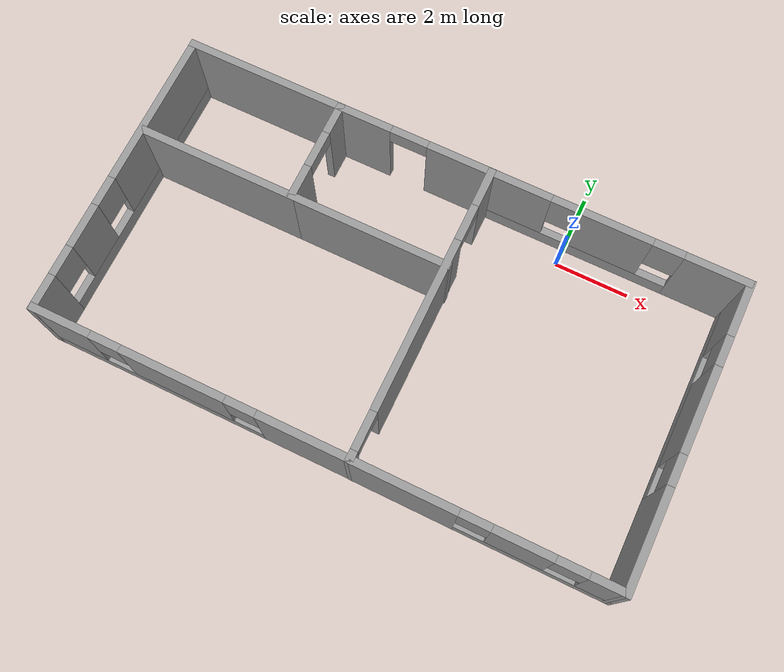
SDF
<?xml version='1.0'?>
<sdf version='1.4'>
  <model name='indoor_walls_doors'>
    <link name='Wall_0'>
      <pose>-2.32354 -3.38502 0 0 0 -1.5708</pose>
      <visual name='Wall_0_Visual_0'>
        <pose>-3.47484 0 1.25 0 -0 0</pose>
        <geometry>
          <box>
            <size>1.06471 0.2 2.5</size>
          </box>
        </geometry>
        <material>
          <script>
            <uri>file://media/materials/scripts/gazebo.material</uri>
            <name>Gazebo/Grey</name>
          </script>
        </material>
      </visual>
      <collision name='Wall_0_Collision_0'>
        <geometry>
          <box>
            <size>1.06471 0.2 2.5</size>
          </box>
        </geometry>
        <pose>-3.47484 0 1.25 0 -0 0</pose>
      </collision>
      <visual name='Wall_0_Visual_1'>
        <pose>0.36959 0 1.25 0 -0 0</pose>
        <geometry>
          <box>
            <size>4.62416 0.2 2.5</size>
          </box>
        </geometry>
        <material>
          <script>
            <uri>file://media/materials/scripts/gazebo.material</uri>
            <name>Gazebo/Grey</name>
          </script>
        </material>
      </visual>
      <collision name='Wall_0_Collision_1'>
        <geometry>
          <box>
            <size>4.62416 0.2 2.5</size>
          </box>
        </geometry>
        <pose>0.36959 0 1.25 0 -0 0</pose>
      </collision>
      <visual name='Wall_0_Visual_2'>
        <pose>3.84443 0 1.25 0 -0 0</pose>
        <geometry>
          <box>
            <size>0.325526 0.2 2.5</size>
          </box>
        </geometry>
        <material>
          <script>
            <uri>file://media/materials/scripts/gazebo.material</uri>
            <name>Gazebo/Grey</name>
          </script>
        </material>
      </visual>
      <collision name='Wall_0_Collision_2'>
        <geometry>
          <box>
            <size>0.325526 0.2 2.5</size>
          </box>
        </geometry>
        <pose>3.84443 0 1.25 0 -0 0</pose>
      </collision>
      <visual name='Wall_0_Visual_3'>
        <pose>-2.44249 0 2.25 0 -0 0</pose>
        <geometry>
          <box>
            <size>1 0.2 0.5</size>
          </box>
        </geometry>
        <material>
          <script>
            <uri>file://media/materials/scripts/gazebo.material</uri>
            <name>Gazebo/Grey</name>
          </script>
        </material>
      </visual>
      <collision name='Wall_0_Collision_3'>
        <geometry>
          <box>
            <size>1 0.2 0.5</size>
          </box>
        </geometry>
        <pose>-2.44249 0 2.25 0 -0 0</pose>
      </collision>
      <visual name='Wall_0_Visual_4'>
        <pose>3.18167 0 2.25 0 -0 0</pose>
        <geometry>
          <box>
            <size>1 0.2 0.5</size>
          </box>
        </geometry>
        <material>
          <script>
            <uri>file://media/materials/scripts/gazebo.material</uri>
            <name>Gazebo/Grey</name>
          </script>
        </material>
      </visual>
      <collision name='Wall_0_Collision_4'>
        <geometry>
          <box>
            <size>1 0.2 0.5</size>
          </box>
        </geometry>
        <pose>3.18167 0 2.25 0 -0 0</pose>
      </collision>
    </link>
    <link name='Wall_1'>
      <pose>1.02791 -7.29982 0 0 0 -0.002269</pose>
      <visual name='Wall_1_Visual_0'>
        <pose>-2.04952 0 1.25 0 -0 0</pose>
        <geometry>
          <box>
            <size>2.80386 0.2 2.5</size>
          </box>
        </geometry>
        <material>
          <script>
            <uri>file://media/materials/scripts/gazebo.material</uri>
            <name>Gazebo/Grey</name>
          </script>
        </material>
      </visual>
      <collision name='Wall_1_Collision_0'>
        <geometry>
          <box>
            <size>2.80386 0.2 2.5</size>
          </box>
        </geometry>
        <pose>-2.04952 0 1.25 0 -0 0</pose>
      </collision>
      <visual name='Wall_1_Visual_1'>
        <pose>1.40193 0 0.25 0 -0 0</pose>
        <geometry>
          <box>
            <size>4.09905 0.2 0.5</size>
          </box>
        </geometry>
        <material>
          <script>
            <uri>file://media/materials/scripts/gazebo.material</uri>
            <name>Gazebo/Grey</name>
          </script>
        </material>
      </visual>
      <collision name='Wall_1_Collision_1'>
        <geometry>
          <box>
            <size>4.09905 0.2 0.5</size>
          </box>
        </geometry>
        <pose>1.40193 0 0.25 0 -0 0</pose>
      </collision>
      <visual name='Wall_1_Visual_2'>
        <pose>0.913581 0 1.5 0 -0 0</pose>
        <geometry>
          <box>
            <size>1.52235 0.2 2</size>
          </box>
        </geometry>
        <material>
          <script>
            <uri>file://media/materials/scripts/gazebo.material</uri>
            <name>Gazebo/Grey</name>
          </script>
        </material>
      </visual>
      <collision name='Wall_1_Collision_2'>
        <geometry>
          <box>
            <size>1.52235 0.2 2</size>
          </box>
        </geometry>
        <pose>0.913581 0 1.5 0 -0 0</pose>
      </collision>
      <visual name='Wall_1_Visual_3'>
        <pose>2.96311 0 1.5 0 -0 0</pose>
        <geometry>
          <box>
            <size>0.976698 0.2 2</size>
          </box>
        </geometry>
        <material>
          <script>
            <uri>file://media/materials/scripts/gazebo.material</uri>
            <name>Gazebo/Grey</name>
          </script>
        </material>
      </visual>
      <collision name='Wall_1_Collision_3'>
        <geometry>
          <box>
            <size>0.976698 0.2 2</size>
          </box>
        </geometry>
        <pose>2.96311 0 1.5 0 -0 0</pose>
      </collision>
      <visual name='Wall_1_Visual_4'>
        <pose>-0.247595 0 1.9 0 -0 0</pose>
        <geometry>
          <box>
            <size>0.8 0.2 1.2</size>
          </box>
        </geometry>
        <material>
          <script>
            <uri>file://media/materials/scripts/gazebo.material</uri>
            <name>Gazebo/Grey</name>
          </script>
        </material>
      </visual>
      <collision name='Wall_1_Collision_4'>
        <geometry>
          <box>
            <size>0.8 0.2 1.2</size>
          </box>
        </geometry>
        <pose>-0.247595 0 1.9 0 -0 0</pose>
      </collision>
      <visual name='Wall_1_Visual_5'>
        <pose>2.07476 0 1.9 0 -0 0</pose>
        <geometry>
          <box>
            <size>0.8 0.2 1.2</size>
          </box>
        </geometry>
        <material>
          <script>
            <uri>file://media/materials/scripts/gazebo.material</uri>
            <name>Gazebo/Grey</name>
          </script>
        </material>
      </visual>
      <collision name='Wall_1_Collision_5'>
        <geometry>
          <box>
            <size>0.8 0.2 1.2</size>
          </box>
        </geometry>
        <pose>2.07476 0 1.9 0 -0 0</pose>
      </collision>
    </link>
    <link name='Wall_10'>
      <pose>-6.43207 0.532142 0 0 -0 0</pose>
      <visual name='Wall_10_Visual_0'>
        <pose>-1.44688 0 1.25 0 -0 0</pose>
        <geometry>
          <box>
            <size>5.6962 0.2 2.5</size>
          </box>
        </geometry>
        <material>
          <script>
            <uri>file://media/materials/scripts/gazebo.material</uri>
            <name>Gazebo/Grey</name>
          </script>
        </material>
      </visual>
      <collision name='Wall_10_Collision_0'>
        <geometry>
          <box>
            <size>5.6962 0.2 2.5</size>
          </box>
        </geometry>
        <pose>-1.44688 0 1.25 0 -0 0</pose>
      </collision>
      <visual name='Wall_10_Visual_1'>
        <pose>3.3481 0 1.25 0 -0 0</pose>
        <geometry>
          <box>
            <size>1.89375 0.2 2.5</size>
          </box>
        </geometry>
        <material>
          <script>
            <uri>file://media/materials/scripts/gazebo.material</uri>
            <name>Gazebo/Grey</name>
          </script>
        </material>
      </visual>
      <collision name='Wall_10_Collision_1'>
        <geometry>
          <box>
            <size>1.89375 0.2 2.5</size>
          </box>
        </geometry>
        <pose>3.3481 0 1.25 0 -0 0</pose>
      </collision>
      <visual name='Wall_10_Visual_2'>
        <pose>1.90123 0 2.25 0 -0 0</pose>
        <geometry>
          <box>
            <size>1 0.2 0.5</size>
          </box>
        </geometry>
        <material>
          <script>
            <uri>file://media/materials/scripts/gazebo.material</uri>
            <name>Gazebo/Grey</name>
          </script>
        </material>
      </visual>
      <collision name='Wall_10_Collision_2'>
        <geometry>
          <box>
            <size>1 0.2 0.5</size>
          </box>
        </geometry>
        <pose>1.90123 0 2.25 0 -0 0</pose>
      </collision>
    </link>
    <link name='Wall_11'>
      <pose>-10.6224 -3.39702 0 0 -0 1.5708</pose>
      <visual name='Wall_11_Visual_0'>
        <pose>-3.49564 0 1.25 0 -0 0</pose>
        <geometry>
          <box>
            <size>0.992206 0.2 2.5</size>
          </box>
        </geometry>
        <material>
          <script>
            <uri>file://media/materials/scripts/gazebo.material</uri>
            <name>Gazebo/Grey</name>
          </script>
        </material>
      </visual>
      <collision name='Wall_11_Collision_0'>
        <geometry>
          <box>
            <size>0.992206 0.2 2.5</size>
          </box>
        </geometry>
        <pose>-3.49564 0 1.25 0 -0 0</pose>
      </collision>
      <visual name='Wall_11_Visual_1'>
        <pose>0.496103 0 0.25 0 -0 0</pose>
        <geometry>
          <box>
            <size>6.99129 0.2 0.5</size>
          </box>
        </geometry>
        <material>
          <script>
            <uri>file://media/materials/scripts/gazebo.material</uri>
            <name>Gazebo/Grey</name>
          </script>
        </material>
      </visual>
      <collision name='Wall_11_Collision_1'>
        <geometry>
          <box>
            <size>6.99129 0.2 0.5</size>
          </box>
        </geometry>
        <pose>0.496103 0 0.25 0 -0 0</pose>
      </collision>
      <visual name='Wall_11_Visual_2'>
        <pose>-1.60203 0 1.5 0 -0 0</pose>
        <geometry>
          <box>
            <size>1.19501 0.2 2</size>
          </box>
        </geometry>
        <material>
          <script>
            <uri>file://media/materials/scripts/gazebo.material</uri>
            <name>Gazebo/Grey</name>
          </script>
        </material>
      </visual>
      <collision name='Wall_11_Collision_2'>
        <geometry>
          <box>
            <size>1.19501 0.2 2</size>
          </box>
        </geometry>
        <pose>-1.60203 0 1.5 0 -0 0</pose>
      </collision>
      <visual name='Wall_11_Visual_3'>
        <pose>1.89361 0 1.5 0 -0 0</pose>
        <geometry>
          <box>
            <size>4.19627 0.2 2</size>
          </box>
        </geometry>
        <material>
          <script>
            <uri>file://media/materials/scripts/gazebo.material</uri>
            <name>Gazebo/Grey</name>
          </script>
        </material>
      </visual>
      <collision name='Wall_11_Collision_3'>
        <geometry>
          <box>
            <size>4.19627 0.2 2</size>
          </box>
        </geometry>
        <pose>1.89361 0 1.5 0 -0 0</pose>
      </collision>
      <visual name='Wall_11_Visual_4'>
        <pose>-2.59954 0 1.9 0 -0 0</pose>
        <geometry>
          <box>
            <size>0.8 0.2 1.2</size>
          </box>
        </geometry>
        <material>
          <script>
            <uri>file://media/materials/scripts/gazebo.material</uri>
            <name>Gazebo/Grey</name>
          </script>
        </material>
      </visual>
      <collision name='Wall_11_Collision_4'>
        <geometry>
          <box>
            <size>0.8 0.2 1.2</size>
          </box>
        </geometry>
        <pose>-2.59954 0 1.9 0 -0 0</pose>
      </collision>
      <visual name='Wall_11_Visual_5'>
        <pose>-0.604526 0 1.9 0 -0 0</pose>
        <geometry>
          <box>
            <size>0.8 0.2 1.2</size>
          </box>
        </geometry>
        <material>
          <script>
            <uri>file://media/materials/scripts/gazebo.material</uri>
            <name>Gazebo/Grey</name>
          </script>
        </material>
      </visual>
      <collision name='Wall_11_Collision_5'>
        <geometry>
          <box>
            <size>0.8 0.2 1.2</size>
          </box>
        </geometry>
        <pose>-0.604526 0 1.9 0 -0 0</pose>
      </collision>
    </link>
    <link name='Wall_13'>
      <pose>-6.52366 -7.28512 0 0 -0 3.14159</pose>
      <visual name='Wall_13_Visual_0'>
        <pose>-2.99927 0 1.25 0 -0 0</pose>
        <geometry>
          <box>
            <size>2.38331 0.2 2.5</size>
          </box>
        </geometry>
        <material>
          <script>
            <uri>file://media/materials/scripts/gazebo.material</uri>
            <name>Gazebo/Grey</name>
          </script>
        </material>
      </visual>
      <collision name='Wall_13_Collision_0'>
        <geometry>
          <box>
            <size>2.38331 0.2 2.5</size>
          </box>
        </geometry>
        <pose>-2.99927 0 1.25 0 -0 0</pose>
      </collision>
      <visual name='Wall_13_Visual_1'>
        <pose>1.19165 0 0.25 0 -0 0</pose>
        <geometry>
          <box>
            <size>5.99854 0.2 0.5</size>
          </box>
        </geometry>
        <material>
          <script>
            <uri>file://media/materials/scripts/gazebo.material</uri>
            <name>Gazebo/Grey</name>
          </script>
        </material>
      </visual>
      <collision name='Wall_13_Collision_1'>
        <geometry>
          <box>
            <size>5.99854 0.2 0.5</size>
          </box>
        </geometry>
        <pose>1.19165 0 0.25 0 -0 0</pose>
      </collision>
      <visual name='Wall_13_Visual_2'>
        <pose>0.374599 0 1.5 0 -0 0</pose>
        <geometry>
          <box>
            <size>2.76443 0.2 2</size>
          </box>
        </geometry>
        <material>
          <script>
            <uri>file://media/materials/scripts/gazebo.material</uri>
            <name>Gazebo/Grey</name>
          </script>
        </material>
      </visual>
      <collision name='Wall_13_Collision_2'>
        <geometry>
          <box>
            <size>2.76443 0.2 2</size>
          </box>
        </geometry>
        <pose>0.374599 0 1.5 0 -0 0</pose>
      </collision>
      <visual name='Wall_13_Visual_3'>
        <pose>3.37387 0 1.5 0 -0 0</pose>
        <geometry>
          <box>
            <size>1.63411 0.2 2</size>
          </box>
        </geometry>
        <material>
          <script>
            <uri>file://media/materials/scripts/gazebo.material</uri>
            <name>Gazebo/Grey</name>
          </script>
        </material>
      </visual>
      <collision name='Wall_13_Collision_3'>
        <geometry>
          <box>
            <size>1.63411 0.2 2</size>
          </box>
        </geometry>
        <pose>3.37387 0 1.5 0 -0 0</pose>
      </collision>
      <visual name='Wall_13_Visual_4'>
        <pose>-1.40761 0 1.9 0 -0 0</pose>
        <geometry>
          <box>
            <size>0.8 0.2 1.2</size>
          </box>
        </geometry>
        <material>
          <script>
            <uri>file://media/materials/scripts/gazebo.material</uri>
            <name>Gazebo/Grey</name>
          </script>
        </material>
      </visual>
      <collision name='Wall_13_Collision_4'>
        <geometry>
          <box>
            <size>0.8 0.2 1.2</size>
          </box>
        </geometry>
        <pose>-1.40761 0 1.9 0 -0 0</pose>
      </collision>
      <visual name='Wall_13_Visual_5'>
        <pose>2.15681 0 1.9 0 -0 0</pose>
        <geometry>
          <box>
            <size>0.8 0.2 1.2</size>
          </box>
        </geometry>
        <material>
          <script>
            <uri>file://media/materials/scripts/gazebo.material</uri>
            <name>Gazebo/Grey</name>
          </script>
        </material>
      </visual>
      <collision name='Wall_13_Collision_5'>
        <geometry>
          <box>
            <size>0.8 0.2 1.2</size>
          </box>
        </geometry>
        <pose>2.15681 0 1.9 0 -0 0</pose>
      </collision>
    </link>
    <link name='Wall_15'>
      <collision name='Wall_15_Collision'>
        <geometry>
          <box>
            <size>4.32517 0.2 2.5</size>
          </box>
        </geometry>
        <pose>0 0 1.25 0 -0 0</pose>
      </collision>
      <visual name='Wall_15_Visual'>
        <pose>0 0 1.25 0 -0 0</pose>
        <geometry>
          <box>
            <size>4.32517 0.2 2.5</size>
          </box>
        </geometry>
        <material>
          <script>
            <uri>file://media/materials/scripts/gazebo.material</uri>
            <name>Gazebo/Grey</name>
          </script>
        </material>
      </visual>
      <velocity_decay>
        <linear>0</linear>
        <angular>0</angular>
      </velocity_decay>
      <pose>-4.35902 -2.13954 0 0 -0 0</pose>
    </link>
    <link name='Wall_17'>
      <collision name='Wall_17_Collision'>
        <geometry>
          <box>
            <size>4.29721 0.2 2.5</size>
          </box>
        </geometry>
        <pose>0 0 1.25 0 -0 0</pose>
      </collision>
      <visual name='Wall_17_Visual'>
        <pose>0 0 1.25 0 -0 0</pose>
        <geometry>
          <box>
            <size>4.29721 0.2 2.5</size>
          </box>
        </geometry>
        <material>
          <script>
            <uri>file://media/materials/scripts/gazebo.material</uri>
            <name>Gazebo/Grey</name>
          </script>
        </material>
      </visual>
      <velocity_decay>
        <linear>0</linear>
        <angular>0</angular>
      </velocity_decay>
      <pose>-8.49466 -2.13954 0 0 -0 3.14159</pose>
    </link>
    <link name='Wall_19'>
      <pose>-6.45487 -0.787777 0 0 -0 1.5708</pose>
      <visual name='Wall_19_Visual_0'>
        <pose>-0.939314 0 1.25 0 -0 0</pose>
        <geometry>
          <box>
            <size>0.94153 0.2 2.5</size>
          </box>
        </geometry>
        <material>
          <script>
            <uri>file://media/materials/scripts/gazebo.material</uri>
            <name>Gazebo/Grey</name>
          </script>
        </material>
      </visual>
      <collision name='Wall_19_Collision_0'>
        <geometry>
          <box>
            <size>0.94153 0.2 2.5</size>
          </box>
        </geometry>
        <pose>-0.939314 0 1.25 0 -0 0</pose>
      </collision>
      <visual name='Wall_19_Visual_1'>
        <pose>0.970765 0 1.25 0 -0 0</pose>
        <geometry>
          <box>
            <size>0.878628 0.2 2.5</size>
          </box>
        </geometry>
        <material>
          <script>
            <uri>file://media/materials/scripts/gazebo.material</uri>
            <name>Gazebo/Grey</name>
          </script>
        </material>
      </visual>
      <collision name='Wall_19_Collision_1'>
        <geometry>
          <box>
            <size>0.878628 0.2 2.5</size>
          </box>
        </geometry>
        <pose>0.970765 0 1.25 0 -0 0</pose>
      </collision>
      <visual name='Wall_19_Visual_2'>
        <pose>0.031451 0 2.25 0 -0 0</pose>
        <geometry>
          <box>
            <size>1 0.2 0.5</size>
          </box>
        </geometry>
        <material>
          <script>
            <uri>file://media/materials/scripts/gazebo.material</uri>
            <name>Gazebo/Grey</name>
          </script>
        </material>
      </visual>
      <collision name='Wall_19_Collision_2'>
        <geometry>
          <box>
            <size>1 0.2 0.5</size>
          </box>
        </geometry>
        <pose>0.031451 0 2.25 0 -0 0</pose>
      </collision>
    </link>
    <link name='Wall_2'>
      <pose>4.37935 -3.38968 0 0 -0 1.5708</pose>
      <visual name='Wall_2_Visual_0'>
        <pose>-2.68707 0 1.25 0 -0 0</pose>
        <geometry>
          <box>
            <size>2.66135 0.2 2.5</size>
          </box>
        </geometry>
        <material>
          <script>
            <uri>file://media/materials/scripts/gazebo.material</uri>
            <name>Gazebo/Grey</name>
          </script>
        </material>
      </visual>
      <collision name='Wall_2_Collision_0'>
        <geometry>
          <box>
            <size>2.66135 0.2 2.5</size>
          </box>
        </geometry>
        <pose>-2.68707 0 1.25 0 -0 0</pose>
      </collision>
      <visual name='Wall_2_Visual_1'>
        <pose>1.33068 0 0.25 0 -0 0</pose>
        <geometry>
          <box>
            <size>5.37413 0.2 0.5</size>
          </box>
        </geometry>
        <material>
          <script>
            <uri>file://media/materials/scripts/gazebo.material</uri>
            <name>Gazebo/Grey</name>
          </script>
        </material>
      </visual>
      <collision name='Wall_2_Collision_1'>
        <geometry>
          <box>
            <size>5.37413 0.2 0.5</size>
          </box>
        </geometry>
        <pose>1.33068 0 0.25 0 -0 0</pose>
      </collision>
      <visual name='Wall_2_Visual_2'>
        <pose>0.573885 0 1.5 0 -0 0</pose>
        <geometry>
          <box>
            <size>2.26055 0.2 2</size>
          </box>
        </geometry>
        <material>
          <script>
            <uri>file://media/materials/scripts/gazebo.material</uri>
            <name>Gazebo/Grey</name>
          </script>
        </material>
      </visual>
      <collision name='Wall_2_Collision_2'>
        <geometry>
          <box>
            <size>2.26055 0.2 2</size>
          </box>
        </geometry>
        <pose>0.573885 0 1.5 0 -0 0</pose>
      </collision>
      <visual name='Wall_2_Visual_3'>
        <pose>3.26095 0 1.5 0 -0 0</pose>
        <geometry>
          <box>
            <size>1.51358 0.2 2</size>
          </box>
        </geometry>
        <material>
          <script>
            <uri>file://media/materials/scripts/gazebo.material</uri>
            <name>Gazebo/Grey</name>
          </script>
        </material>
      </visual>
      <collision name='Wall_2_Collision_3'>
        <geometry>
          <box>
            <size>1.51358 0.2 2</size>
          </box>
        </geometry>
        <pose>3.26095 0 1.5 0 -0 0</pose>
      </collision>
      <visual name='Wall_2_Visual_4'>
        <pose>-0.956391 0 1.9 0 -0 0</pose>
        <geometry>
          <box>
            <size>0.8 0.2 1.2</size>
          </box>
        </geometry>
        <material>
          <script>
            <uri>file://media/materials/scripts/gazebo.material</uri>
            <name>Gazebo/Grey</name>
          </script>
        </material>
      </visual>
      <collision name='Wall_2_Collision_4'>
        <geometry>
          <box>
            <size>0.8 0.2 1.2</size>
          </box>
        </geometry>
        <pose>-0.956391 0 1.9 0 -0 0</pose>
      </collision>
      <visual name='Wall_2_Visual_5'>
        <pose>2.10416 0 1.9 0 -0 0</pose>
        <geometry>
          <box>
            <size>0.8 0.2 1.2</size>
          </box>
        </geometry>
        <material>
          <script>
            <uri>file://media/materials/scripts/gazebo.material</uri>
            <name>Gazebo/Grey</name>
          </script>
        </material>
      </visual>
      <collision name='Wall_2_Collision_5'>
        <geometry>
          <box>
            <size>0.8 0.2 1.2</size>
          </box>
        </geometry>
        <pose>2.10416 0 1.9 0 -0 0</pose>
      </collision>
    </link>
    <link name='Wall_3'>
      <pose>1.04015 0.528226 0 0 -0 3.14154</pose>
      <visual name='Wall_3_Visual_0'>
        <pose>-2.56362 0 1.25 0 -0 0</pose>
        <geometry>
          <box>
            <size>1.75119 0.2 2.5</size>
          </box>
        </geometry>
        <material>
          <script>
            <uri>file://media/materials/scripts/gazebo.material</uri>
            <name>Gazebo/Grey</name>
          </script>
        </material>
      </visual>
      <collision name='Wall_3_Collision_0'>
        <geometry>
          <box>
            <size>1.75119 0.2 2.5</size>
          </box>
        </geometry>
        <pose>-2.56362 0 1.25 0 -0 0</pose>
      </collision>
      <visual name='Wall_3_Visual_1'>
        <pose>0.875595 0 0.25 0 -0 0</pose>
        <geometry>
          <box>
            <size>5.12725 0.2 0.5</size>
          </box>
        </geometry>
        <material>
          <script>
            <uri>file://media/materials/scripts/gazebo.material</uri>
            <name>Gazebo/Grey</name>
          </script>
        </material>
      </visual>
      <collision name='Wall_3_Collision_1'>
        <geometry>
          <box>
            <size>5.12725 0.2 0.5</size>
          </box>
        </geometry>
        <pose>0.875595 0 0.25 0 -0 0</pose>
      </collision>
      <visual name='Wall_3_Visual_2'>
        <pose>0.031171 0 1.5 0 -0 0</pose>
        <geometry>
          <box>
            <size>1.8384 0.2 2</size>
          </box>
        </geometry>
        <material>
          <script>
            <uri>file://media/materials/scripts/gazebo.material</uri>
            <name>Gazebo/Grey</name>
          </script>
        </material>
      </visual>
      <collision name='Wall_3_Collision_2'>
        <geometry>
          <box>
            <size>1.8384 0.2 2</size>
          </box>
        </geometry>
        <pose>0.031171 0 1.5 0 -0 0</pose>
      </collision>
      <visual name='Wall_3_Visual_3'>
        <pose>2.59479 0 1.5 0 -0 0</pose>
        <geometry>
          <box>
            <size>1.68885 0.2 2</size>
          </box>
        </geometry>
        <material>
          <script>
            <uri>file://media/materials/scripts/gazebo.material</uri>
            <name>Gazebo/Grey</name>
          </script>
        </material>
      </visual>
      <collision name='Wall_3_Collision_3'>
        <geometry>
          <box>
            <size>1.68885 0.2 2</size>
          </box>
        </geometry>
        <pose>2.59479 0 1.5 0 -0 0</pose>
      </collision>
      <visual name='Wall_3_Visual_4'>
        <pose>-1.28803 0 1.9 0 -0 0</pose>
        <geometry>
          <box>
            <size>0.8 0.2 1.2</size>
          </box>
        </geometry>
        <material>
          <script>
            <uri>file://media/materials/scripts/gazebo.material</uri>
            <name>Gazebo/Grey</name>
          </script>
        </material>
      </visual>
      <collision name='Wall_3_Collision_4'>
        <geometry>
          <box>
            <size>0.8 0.2 1.2</size>
          </box>
        </geometry>
        <pose>-1.28803 0 1.9 0 -0 0</pose>
      </collision>
      <visual name='Wall_3_Visual_5'>
        <pose>1.35037 0 1.9 0 -0 0</pose>
        <geometry>
          <box>
            <size>0.8 0.2 1.2</size>
          </box>
        </geometry>
        <material>
          <script>
            <uri>file://media/materials/scripts/gazebo.material</uri>
            <name>Gazebo/Grey</name>
          </script>
        </material>
      </visual>
      <collision name='Wall_3_Collision_5'>
        <geometry>
          <box>
            <size>0.8 0.2 1.2</size>
          </box>
        </geometry>
        <pose>1.35037 0 1.9 0 -0 0</pose>
      </collision>
    </link>
    <static>1</static>
  </model>
</sdf>
